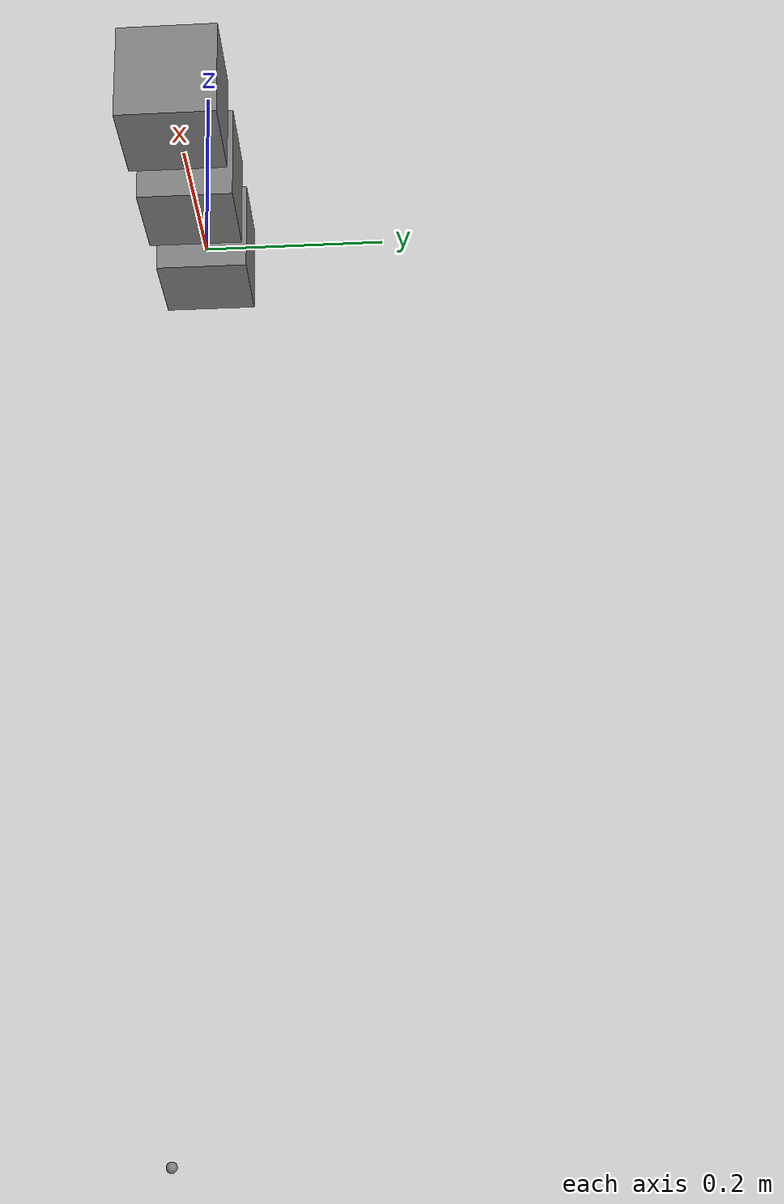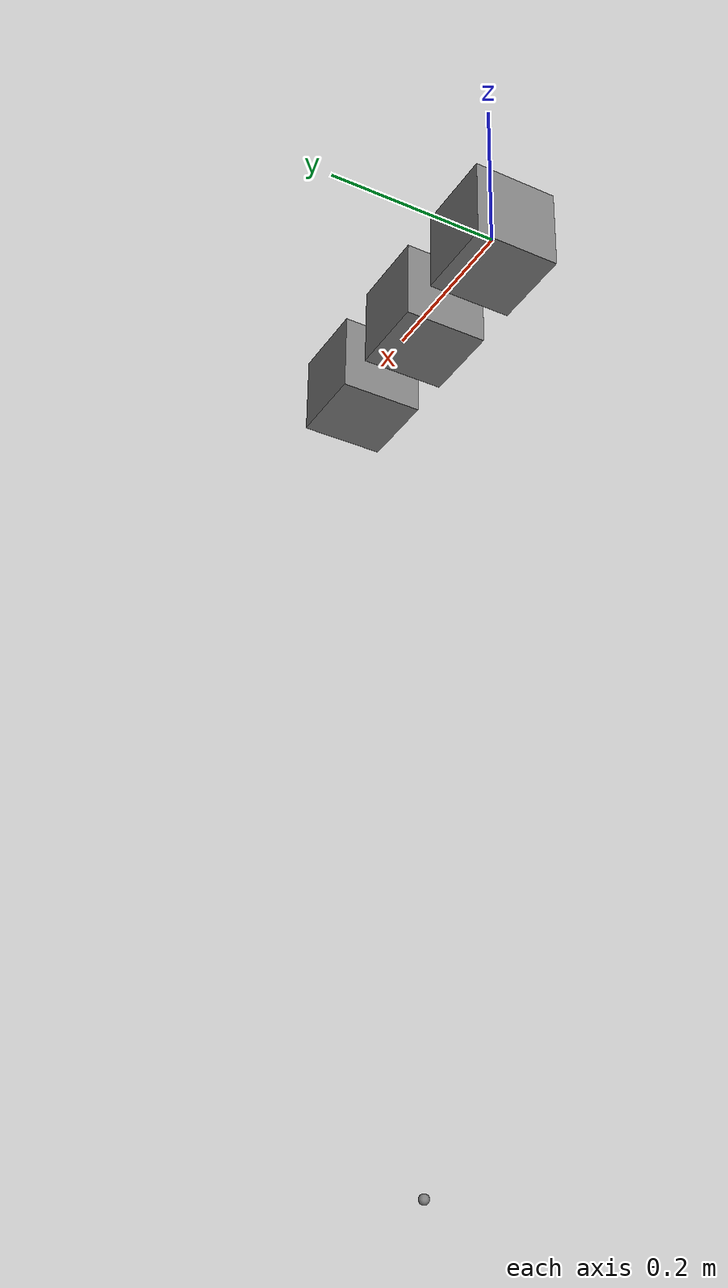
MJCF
<mujoco>
  <!--  linear dynamical system with fixed, anaylticaly computable derivatives  -->
  <default>
    <joint axis="1 0 0" damping=".01" stiffness=".1"/>
    <geom type="box" size=".05 .05 .05"/>
  </default>

  <option>
    <flag gravity="disable"/>
  </option>

  <worldbody>
    <light pos="0 0 1"/>
    <body>
      <joint name="joint0"/>
      <geom/>
      <body pos=".15 0 0">
        <joint name="joint1"/>
        <site name="accelerometer" pos="0 0 -1"/>
        <geom/>
        <body pos=".15 0 0">
          <joint/>
          <geom/>
        </body>
      </body>
    </body>
  </worldbody>

  <actuator>
    <motor joint="joint0" ctrllimited="true" ctrlrange="-1 1"/>
    <motor joint="joint1" ctrllimited="true" ctrlrange="-1 1"/>
  </actuator>

  <sensor>
    <jointvel joint="joint1"/>
    <jointpos joint="joint0"/>
    <accelerometer site="accelerometer"/>
  </sensor>
</mujoco>
